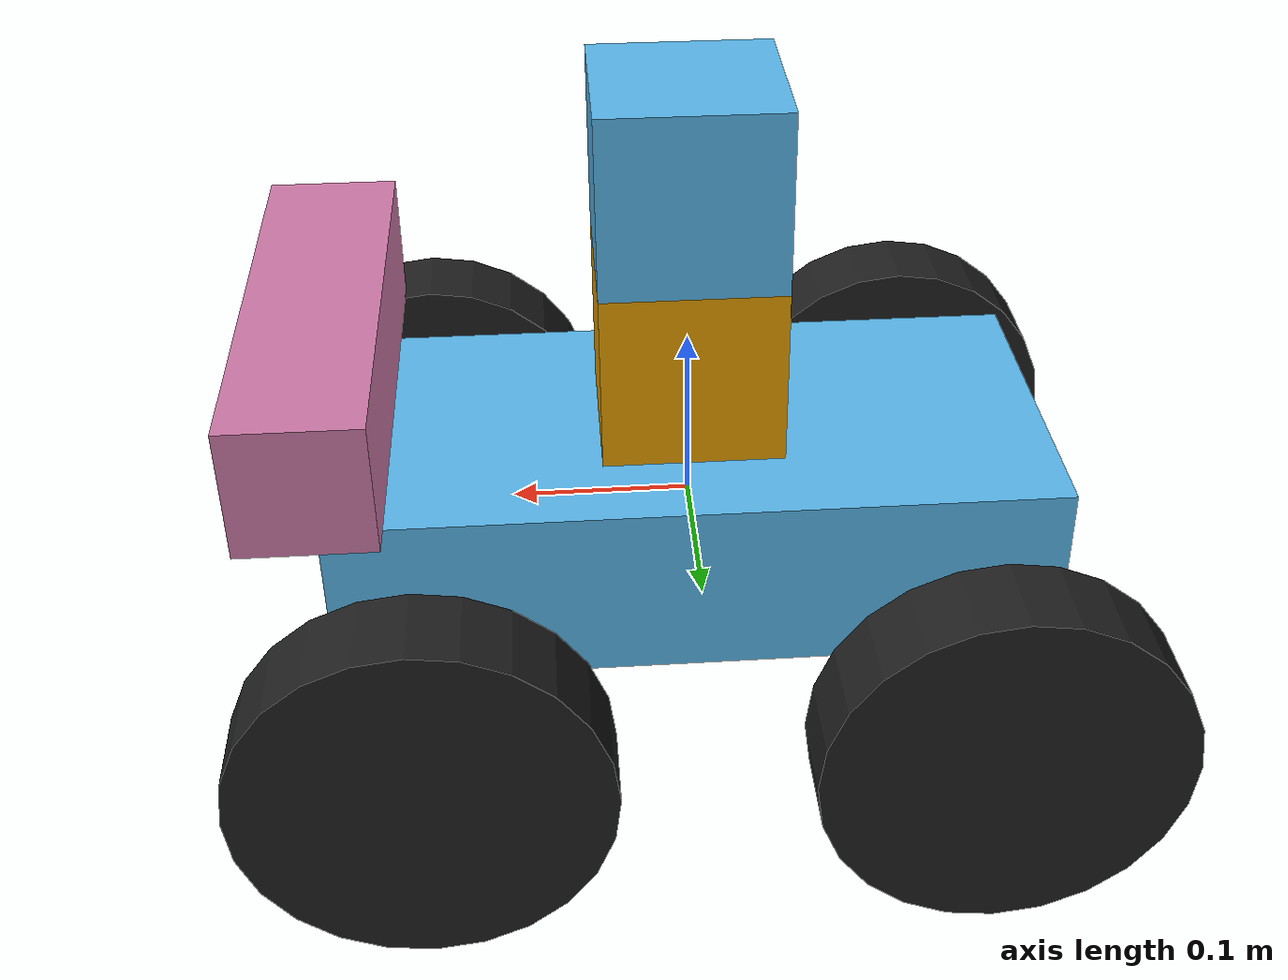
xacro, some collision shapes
<?xml version='1.0'?>

<robot name="rob_bot"
    xmlns:xacro="http://www.ros.org/wiki/xacro">
    <xacro:include filename="$(find rob_bot)/urdf/rob_bot.gazebo" />

    <link name="robot_footprint"></link>

    <joint name="robot_footprint_joint" type="fixed">
        <origin xyz="0 0 0" rpy="0 0 0" />
        <parent link="robot_footprint"/>
        <child link="chassis" />
    </joint>

    <!-- Chassis -->
    <link name='chassis'>
        <pose>0 0 0.1 0 0 0</pose>

        <inertial>
            <mass value="15.0"/>
            <origin xyz="0.0 0 0" rpy=" 0 0 0"/>
            <inertia ixx="0.1" ixy="0" ixz="0" iyy="0.1" iyz="0" izz="0.1" />
        </inertial>

        <collision name='chassis_collision'>
            <origin xyz="0 0 0" rpy=" 0 0 0"/>
            <geometry>
                <box size=".4 .2 .1"/>
            </geometry>
        </collision>

        <visual name='chassis_visual'>
            <origin xyz="0 0 0" rpy=" 0 0 0"/>
            <geometry>
                <box size=".4 .2 .1"/>
            </geometry>
        </visual>
    </link>
    <!-- end chassis -->
    <!-- front left wheel -->
    <link name="front_left_wheel">

        <visual name='front_left_wheel_visual'>
            <origin xyz="0 0 0" rpy=" 0 1.5707 1.5707"/>
            <geometry>
                <cylinder radius="0.1" length="0.05"/>
            </geometry>
            <material name="black"/>
        </visual>

        <collision name='front_left_wheel_collision'>
            <origin xyz="0 0 0" rpy=" 0 1.5707 1.5707"/>
            <geometry>
                <cylinder radius="0.1" length="0.05"/>
            </geometry>
        </collision>

        <inertial>
            <mass value="5.0"/>
            <origin xyz="0.0 0 0" rpy=" 0 1.5707 1.5707"/>
            <inertia ixx="0.1" ixy="0" ixz="0" iyy="0.1" iyz="0" izz="0.1" />
        </inertial>
    </link>

    <joint type="continuous" name="front_left_wheel_joint">
        <origin xyz="0.15 0.18 -.05" rpy="0 0 0"/>
        <child link="front_left_wheel"/>
        <parent link="chassis"/>
        <axis xyz="0 1 0" rpy="0 0 0"/>
        <limit effort="10000" velocity="1000"/>
        <joint_properties damping="1.0" friction="1.0"/>
    </joint>
    <!-- end front left wheel -->
    <!-- front right wheel -->
    <link name="front_right_wheel">

        <visual name='front_right_wheel_visual'>
            <origin xyz="0 0 0" rpy=" 0 1.5707 1.5707"/>
            <geometry>
                <cylinder radius="0.1" length="0.05"/>
            </geometry>
            <material name="black"/>
        </visual>

        <collision name='front_right_wheel_collision'>
            <origin xyz="0 0 0" rpy=" 0 1.5707 1.5707"/>
            <geometry>
                <cylinder radius="0.1" length="0.05"/>
            </geometry>
        </collision>

        <inertial>
            <mass value="5.0"/>
            <origin xyz="0.0 0 0" rpy=" 0 1.5707 1.5707"/>
            <inertia ixx="0.1" ixy="0" ixz="0" iyy="0.1" iyz="0" izz="0.1" />
        </inertial>
    </link>

    <joint type="continuous" name="front_right_wheel_joint">
        <origin xyz="-0.15 0.18 -.05" rpy="0 0 0"/>
        <child link="front_right_wheel"/>
        <parent link="chassis"/>
        <axis xyz="0 1 0" rpy="0 0 0"/>
        <limit effort="10000" velocity="1000"/>
        <joint_properties damping="1.0" friction="1.0"/>
    </joint>
    <!-- end front right wheel -->

    <!-- rear left wheel -->
    <link name="rear_left_wheel">

        <visual name='rear_left_wheel_visual'>
            <origin xyz="0 0 0" rpy=" 0 1.5707 1.5707"/>
            <geometry>
                <cylinder radius="0.1" length="0.05"/>
            </geometry>
            <material name="black"/>
        </visual>

        <collision name='rear_left_wheel_collision'>
            <origin xyz="0 0 0" rpy=" 0 1.5707 1.5707"/>
            <geometry>
                <cylinder radius="0.1" length="0.05"/>
            </geometry>
        </collision>

        <inertial>
            <mass value="5.0"/>
            <origin xyz="0.0 0 0" rpy=" 0 1.5707 1.5707"/>
            <inertia ixx="0.1" ixy="0" ixz="0" iyy="0.1" iyz="0" izz="0.1" />
        </inertial>
    </link>

    <joint type="continuous" name="rear_left_wheel_joint">
        <origin xyz="0.15 -0.18 -0.05" rpy="0 0 0"/>
        <child link="rear_left_wheel"/>
        <parent link="chassis"/>
        <axis xyz="0 1 0" rpy="0 0 0"/>
        <limit effort="10000" velocity="1000"/>
        <joint_properties damping="1.0" friction="1.0"/>
    </joint>
    <!-- end rear left wheel -->
    <!-- rear right wheel -->
    <link name="rear_right_wheel">

        <visual name='rear_right_wheel_visual'>
            <origin xyz="0 0 0" rpy=" 0 1.5707 1.5707"/>
            <geometry>
                <cylinder radius="0.1" length="0.05"/>
            </geometry>
            <material name="black"/>
        </visual>

        <collision name='rear_right_wheel_collision'>
            <origin xyz="0 0 0" rpy=" 0 1.5707 1.5707"/>
            <geometry>
                <cylinder radius="0.1" length="0.05"/>
            </geometry>
        </collision>

        <inertial>
            <mass value="5.0"/>
            <origin xyz="0.0 0 0" rpy=" 0 1.5707 1.5707"/>
            <inertia ixx="0.1" ixy="0" ixz="0" iyy="0.1" iyz="0" izz="0.1" />
        </inertial>
    </link>

    <joint type="continuous" name="rear_right_wheel_joint">
        <origin xyz="-0.15 -0.18 -0.05" rpy="0 0 0"/>
        <child link="rear_right_wheel"/>
        <parent link="chassis"/>
        <axis xyz="0 1 0" rpy="0 0 0"/>
        <limit effort="10000" velocity="1000"/>
        <joint_properties damping="1.0" friction="1.0"/>
    </joint>
    <!-- end rear right wheel -->

    <!-- kinect camera -->
    <link name='camera'>
        <inertial>
            <mass value="0.1"/>
            <origin xyz="0.0 0 0" rpy=" 0 0 0"/>
            <inertia ixx="1e-6" ixy="0" ixz="0" iyy="1e-6" iyz="0" izz="1e-6"/>
        </inertial>

        <collision name='collision'>
            <origin xyz="0.0 0 0" rpy=" 0 0 0"/>
            <geometry>
                <box size="0.073000 0.276000 0.07200"/>
            </geometry>
        </collision>

        <visual name='camera_visual'>
            <origin xyz="0.0 0 0" rpy=" 0 0 0"/>
            <geometry>
                <mesh filename="package://rob_bot/meshes/kinect.dae"/>
            </geometry>
        </visual>
    </link>
    <joint type="fixed" name="camera_link">
        <origin xyz="0.2 0 0.1" rpy="0 0 0"/>
        <child link="camera"/>
        <parent link="chassis"/>
    </joint>

    <joint name="camera_rgbd_joint" type="fixed">
        <origin xyz="0 0 0" rpy="-${pi/2} 0 -${pi/2}"/>
        <parent link="camera"/>
        <child link="camera_rgbd_frame"/>
    </joint>
    <link name="camera_rgbd_frame"/>
    <!-- end kinect -->

    <!-- begin scanner mount -->
    <!-- raise scanner up 10cm -->
    <link name='scanner_mount'>
        <inertial>
            <mass value="0.1"/>
            <origin xyz="0.0 0 0" rpy=" 0 0 0"/>
            <inertia ixx="0.1" ixy="0" ixz="0" iyy="0.1" iyz="0" izz="0.1" />
        </inertial>

        <collision name='scanner_mount_collision'>
            <origin xyz="0 0 0" rpy=" 0 0 0"/>
            <geometry>
                <box size=".1 .1 .1"/>
            </geometry>
        </collision>

        <visual name='scanner_mount_visual'>
            <origin xyz="0 0 0" rpy=" 0 0 0"/>
            <geometry>
                <box size=".1 .1 .1"/>
            </geometry>
        </visual>
    </link>
    <joint type='fixed' name='scanner_mount_to_chasis'>
        <origin xyz='0 0 0.1' rpy='0 0 0'/>
        <child link='scanner_mount'/>
        <parent link='chassis'/>
    </joint>
    <!-- end scanner mount -->
    <!-- begin laser scanner -->
    <link name='hokuyo'>
        <visual name='hokuyo_visual'>
            <origin xyz="0 0 0" rpy="0 0 0"/>
            <geometry>
                <mesh filename="package://rob_bot/meshes/hokuyo.dae"/>
            </geometry>
        </visual>
        <inertial>
            <mass value="0.1"/>
            <origin xyz="0.0 0 0" rpy="0 0 0"/>
            <inertia ixx="1e-6" ixy="0" ixz="0" iyy="1e-6" iyz="0" izz="1e-6"/>
        </inertial>

        <collision name='collision'>
            <origin xyz="0 0 0" rpy="0 0 0"/>
            <geometry>
                <box size='0.1 0.1 0.1'/>
            </geometry>
        </collision>
    </link>

    <joint type="fixed" name="hokuyo_to_scanner_mount">
        <origin xyz="0 0 0.1" rpy="0 0 0"/>
        <child link="hokuyo"/>
        <parent link="scanner_mount"/>
    </joint>
    <!-- end laser scanner -->
</robot>
